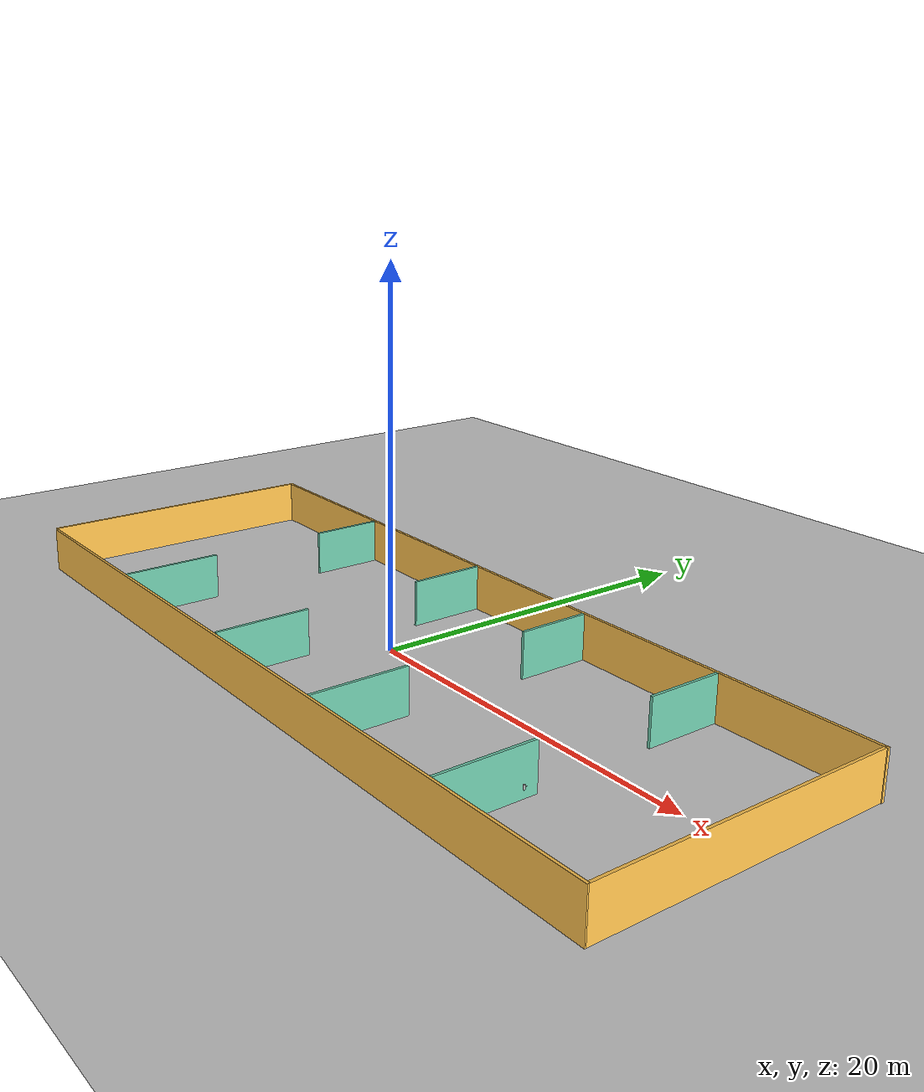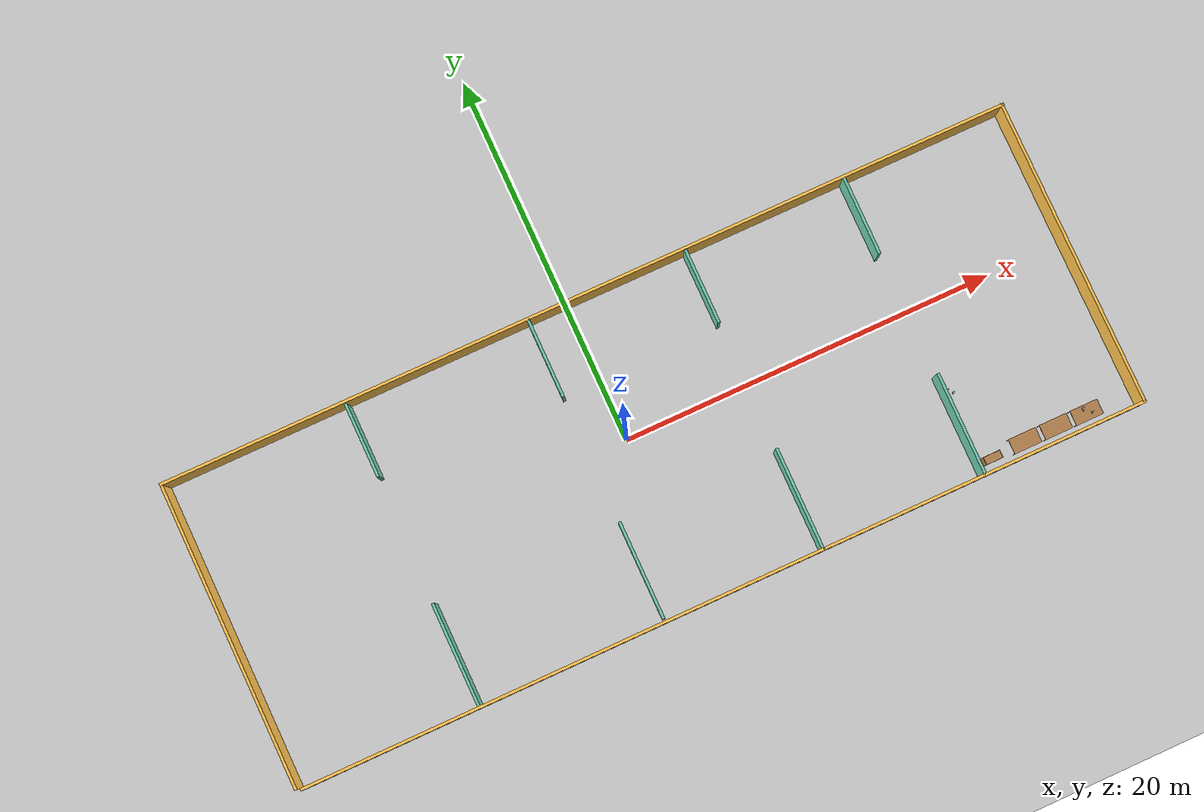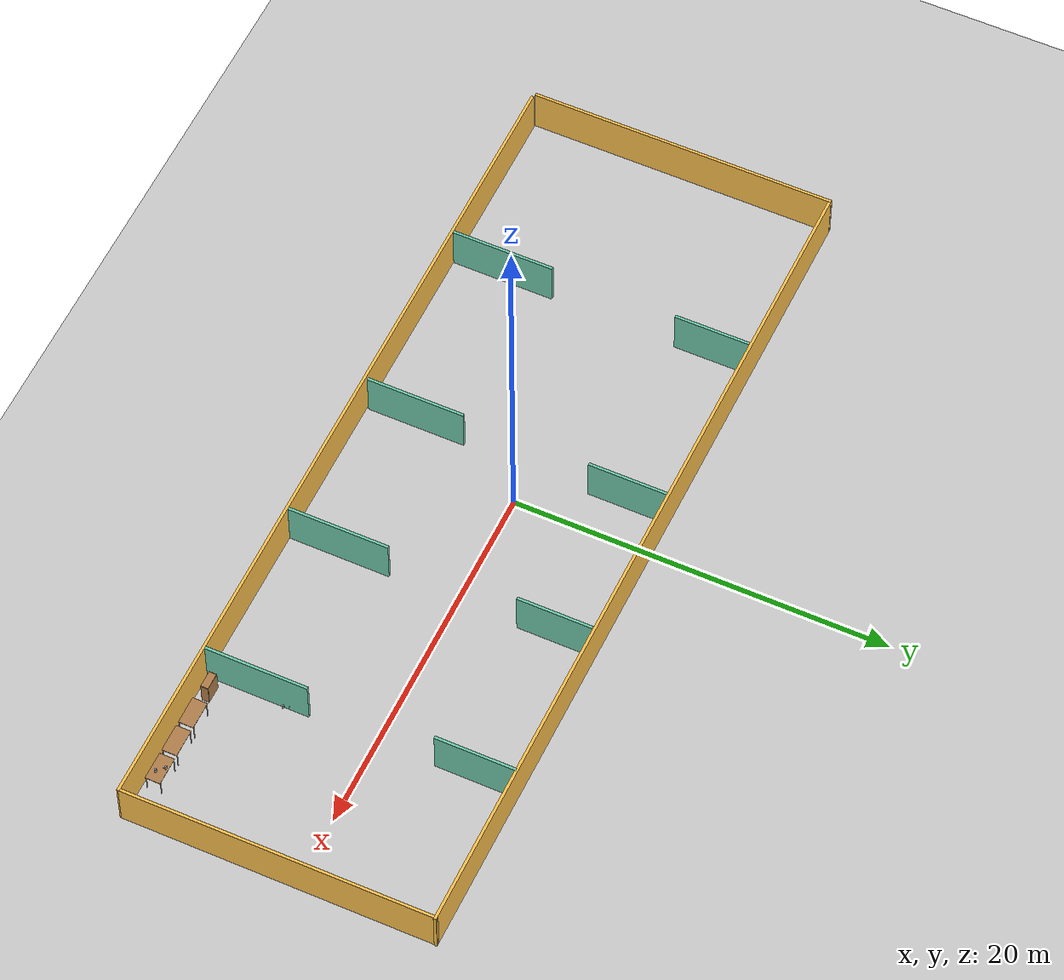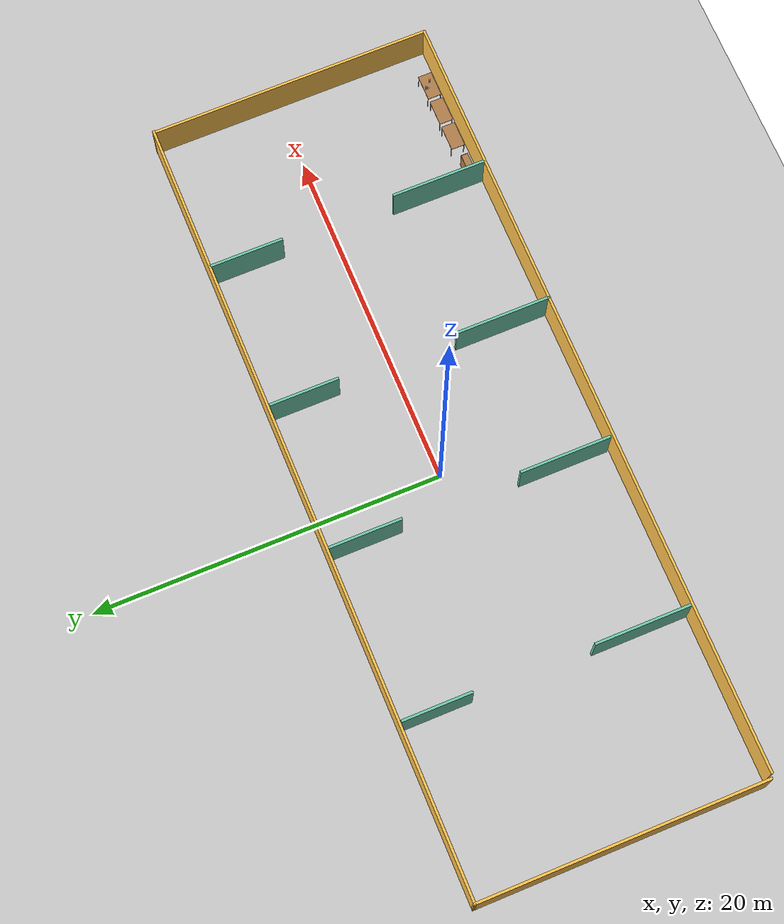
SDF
<sdf version="1.6">
 <world name="default">
  <light name="sun" type="directional">
   <pose>0 0 10 0 -0 0</pose>
   <diffuse>0.8 0.8 0.8 1</diffuse>
   <specular>0.2 0.2 0.2 1</specular>
   <attenuation>
    <range>1000</range>
    <constant>0.9</constant>
    <linear>0.01</linear>
    <quadratic>0.001</quadratic>
   </attenuation>
   <direction>-0.5 0.1 -0.9</direction>
  </light>
  <model name="ground_plane">
   <static>1</static>
   <link name="link">
    <collision name="collision">
     <geometry><plane><normal>0 0 1</normal><size>100 100</size></plane></geometry>
     <surface>
      <contact><collide_bitmask>65535</collide_bitmask></contact>
      <friction><ode><mu>100</mu><mu2>50</mu2></ode></friction>
     </surface>
    </collision>
    <visual name="visual">
     <cast_shadows>0</cast_shadows>
     <geometry><plane><normal>0 0 1</normal><size>100 100</size></plane></geometry>
     <material>
      <script><uri>file://media/materials/scripts/gazebo.material</uri><name>Gazebo/Grey</name></script>
     </material>
    </visual>
   </link>
  </model>
  <gravity>0 0 -9.8</gravity>
  <magnetic_field>6e-06 2.3e-05 -4.2e-05</magnetic_field>
  <atmosphere type="adiabatic"/>
  <physics name="default_physics" default="0" type="ode">
   <max_step_size>0.001</max_step_size>
   <real_time_factor>1</real_time_factor>
   <real_time_update_rate>1000</real_time_update_rate>
  </physics>
  <scene><ambient>0.4 0.4 0.4 1</ambient><background>0.7 0.7 0.7 1</background><shadows>1</shadows></scene>
  <audio><device>default</device></audio>
  <spherical_coordinates>
   <surface_model>EARTH_WGS84</surface_model>
   <latitude_deg>0</latitude_deg>
   <longitude_deg>0</longitude_deg>
   <elevation>0</elevation>
   <heading_deg>0</heading_deg>
  </spherical_coordinates>
  <model name="Hospital">
   <pose>1.0691 -0.83789 0 0 -0 0</pose>
   <link name="Wall_17">
    <collision name="Wall_17_Collision">
     <geometry><box><size>4 0.15 2.5</size></box></geometry>
     <pose>0 0 1.25 0 -0 0</pose>
    </collision>
    <visual name="Wall_17_Visual">
     <pose>0 0 1.25 0 -0 0</pose>
     <geometry><box><size>4 0.15 2.5</size></box></geometry>
     <material>
      <script><uri>file://media/materials/scripts/gazebo.material</uri><name>Gazebo/Grey</name></script>
      <ambient>0.435294 0.796078 0.67451 1</ambient>
     </material>
     <meta><layer>0</layer></meta>
    </visual>
    <pose>-13.0475 6.1149 0 0 -0 -1.5708</pose>
   </link>
   <link name="Wall_19">
    <collision name="Wall_19_Collision">
     <geometry><box><size>4.25 0.15 2.5</size></box></geometry>
     <pose>0 0 1.25 0 -0 0</pose>
    </collision>
    <visual name="Wall_19_Visual">
     <pose>0 0 1.25 0 -0 0</pose>
     <geometry><box><size>4.25 0.15 2.5</size></box></geometry>
     <material>
      <script><uri>file://media/materials/scripts/gazebo.material</uri><name>Gazebo/Grey</name></script>
      <ambient>0.435294 0.796078 0.67451 1</ambient>
     </material>
     <meta><layer>0</layer></meta>
    </visual>
    <pose>-3.11079 6.05236 0 0 -0 -1.5708</pose>
   </link>
   <link name="Wall_21">
    <collision name="Wall_21_Collision">
     <geometry><box><size>4 0.15 2.5</size></box></geometry>
     <pose>0 0 1.25 0 -0 0</pose>
    </collision>
    <visual name="Wall_21_Visual">
     <pose>0 0 1.25 0 -0 0</pose>
     <geometry><box><size>4 0.15 2.5</size></box></geometry>
     <material>
      <script><uri>file://media/materials/scripts/gazebo.material</uri><name>Gazebo/Grey</name></script>
      <ambient>0.435294 0.796078 0.67451 1</ambient>
     </material>
     <meta><layer>0</layer></meta>
    </visual>
    <pose>5.44089 6.07909 0 0 -0 -1.5708</pose>
   </link>
   <link name="Wall_23">
    <collision name="Wall_23_Collision">
     <geometry><box><size>4.25 0.15 2.5</size></box></geometry>
     <pose>0 0 1.25 0 -0 0</pose>
    </collision>
    <visual name="Wall_23_Visual">
     <pose>0 0 1.25 0 -0 0</pose>
     <geometry><box><size>4.25 0.15 2.5</size></box></geometry>
     <material>
      <script><uri>file://media/materials/scripts/gazebo.material</uri><name>Gazebo/Grey</name></script>
      <ambient>0.435294 0.796078 0.67451 1</ambient>
     </material>
     <meta><layer>0</layer></meta>
    </visual>
    <pose>14.1409 6.00062 0 0 -0 -1.5708</pose>
   </link>
   <link name="Wall_26">
    <collision name="Wall_26_Collision">
     <geometry><box><size>45.75 0.15 2.5</size></box></geometry>
     <pose>0 0 1.25 0 -0 0</pose>
    </collision>
    <visual name="Wall_26_Visual">
     <pose>0 0 1.25 0 -0 0</pose>
     <geometry><box><size>45.75 0.15 2.5</size></box></geometry>
     <material>
      <script><uri>file://media/materials/scripts/gazebo.material</uri><name>Gazebo/Grey</name></script>
      <ambient>1 0.764706 0.305882 1</ambient>
     </material>
     <meta><layer>0</layer></meta>
    </visual>
    <pose>0.137339 -8.25445 0 0 -0 0</pose>
   </link>
   <link name="Wall_27">
    <collision name="Wall_27_Collision">
     <geometry><box><size>16.4764 0.15 2.5</size></box></geometry>
     <pose>0 0 1.25 0 -0 0</pose>
    </collision>
    <visual name="Wall_27_Visual">
     <pose>0 0 1.25 0 -0 0</pose>
     <geometry><box><size>16.4764 0.15 2.5</size></box></geometry>
     <material>
      <script><uri>file://media/materials/scripts/gazebo.material</uri><name>Gazebo/Grey</name></script>
      <ambient>1 0.764706 0.305882 1</ambient>
     </material>
     <meta><layer>0</layer></meta>
    </visual>
    <pose>22.902 -0.020567 0 0 -0 1.57513</pose>
   </link>
   <link name="Wall_31">
    <collision name="Wall_31_Collision">
     <geometry><box><size>16.5 0.15 2.5</size></box></geometry>
     <pose>0 0 1.25 0 -0 0</pose>
    </collision>
    <visual name="Wall_31_Visual">
     <pose>0 0 1.25 0 -0 0</pose>
     <geometry><box><size>16.5 0.15 2.5</size></box></geometry>
     <material>
      <script><uri>file://media/materials/scripts/gazebo.material</uri><name>Gazebo/Grey</name></script>
      <ambient>1 0.764706 0.305882 1</ambient>
     </material>
     <meta><layer>0</layer></meta>
    </visual>
    <pose>-22.9375 0.079247 0 0 -0 -1.5708</pose>
   </link>
   <link name="Wall_33">
    <collision name="Wall_33_Collision">
     <geometry><box><size>5.5 0.15 2.5</size></box></geometry>
     <pose>0 0 1.25 0 -0 0</pose>
    </collision>
    <visual name="Wall_33_Visual">
     <pose>0 0 1.25 0 -0 0</pose>
     <geometry><box><size>5.5 0.15 2.5</size></box></geometry>
     <material>
      <script><uri>file://media/materials/scripts/gazebo.material</uri><name>Gazebo/Grey</name></script>
      <ambient>0.435294 0.796078 0.67451 1</ambient>
     </material>
     <meta><layer>0</layer></meta>
    </visual>
    <pose>-13.1614 -5.42759 0 0 -0 -1.5708</pose>
   </link>
   <link name="Wall_35">
    <collision name="Wall_35_Collision">
     <geometry><box><size>5.25 0.15 2.5</size></box></geometry>
     <pose>0 0 1.25 0 -0 0</pose>
    </collision>
    <visual name="Wall_35_Visual">
     <pose>0 0 1.25 0 -0 0</pose>
     <geometry><box><size>5.25 0.15 2.5</size></box></geometry>
     <material>
      <script><uri>file://media/materials/scripts/gazebo.material</uri><name>Gazebo/Grey</name></script>
      <ambient>0.435294 0.796078 0.67451 1</ambient>
     </material>
     <meta><layer>0</layer></meta>
    </visual>
    <pose>-3.15643 -5.46309 0 0 -0 -1.5708</pose>
   </link>
   <link name="Wall_37">
    <collision name="Wall_37_Collision">
     <geometry><box><size>5.5 0.15 2.5</size></box></geometry>
     <pose>0 0 1.25 0 -0 0</pose>
    </collision>
    <visual name="Wall_37_Visual">
     <pose>0 0 1.25 0 -0 0</pose>
     <geometry><box><size>5.5 0.15 2.5</size></box></geometry>
     <material>
      <script><uri>file://media/materials/scripts/gazebo.material</uri><name>Gazebo/Grey</name></script>
      <ambient>0.435294 0.796078 0.67451 1</ambient>
     </material>
     <meta><layer>0</layer></meta>
    </visual>
    <pose>5.40397 -5.53459 0 0 -0 -1.5708</pose>
   </link>
   <link name="Wall_39">
    <collision name="Wall_39_Collision">
     <geometry><box><size>5.5 0.15 2.5</size></box></geometry>
     <pose>0 0 1.25 0 -0 0</pose>
    </collision>
    <visual name="Wall_39_Visual">
     <pose>0 0 1.25 0 -0 0</pose>
     <geometry><box><size>5.5 0.15 2.5</size></box></geometry>
     <material>
      <script><uri>file://media/materials/scripts/gazebo.material</uri><name>Gazebo/Grey</name></script>
      <ambient>0.435294 0.796078 0.67451 1</ambient>
     </material>
     <meta><layer>0</layer></meta>
    </visual>
    <pose>14.2319 -5.48109 0 0 -0 -1.5708</pose>
   </link>
   <link name="Wall_9">
    <collision name="Wall_9_Collision">
     <geometry><box><size>45.9963 0.15 2.5</size></box></geometry>
     <pose>0 0 1.25 0 -0 0</pose>
    </collision>
    <visual name="Wall_9_Visual">
     <pose>0 0 1.25 0 -0 0</pose>
     <geometry><box><size>45.9963 0.15 2.5</size></box></geometry>
     <material>
      <script><uri>file://media/materials/scripts/gazebo.material</uri><name>Gazebo/Grey</name></script>
      <ambient>1 0.764706 0.305882 1</ambient>
     </material>
     <meta><layer>0</layer></meta>
    </visual>
    <pose>-0.014403 8.19272 0 0 -0 3.13891</pose>
   </link>
   <static>1</static>
  </model>
  <model name="table">
   <static>1</static>
   <link name="link">
    <collision name="surface">
     <pose>0 0 1 0 -0 0</pose>
     <geometry><box><size>1.5 0.8 0.03</size></box></geometry>
     <surface><friction><ode><mu>0.6</mu><mu2>0.6</mu2></ode></friction></surface>
    </collision>
    <visual name="visual1">
     <pose>0 0 1 0 -0 0</pose>
     <geometry><box><size>1.5 0.8 0.03</size></box></geometry>
     <material>
      <script><uri>file://media/materials/scripts/gazebo.material</uri><name>Gazebo/Wood</name></script>
     </material>
    </visual>
    <collision name="front_left_leg">
     <pose>0.68 0.38 0.5 0 -0 0</pose>
     <geometry><cylinder><radius>0.02</radius><length>1</length></cylinder></geometry>
    </collision>
    <visual name="front_left_leg">
     <pose>0.68 0.38 0.5 0 -0 0</pose>
     <geometry><cylinder><radius>0.02</radius><length>1</length></cylinder></geometry>
     <material>
      <script><uri>file://media/materials/scripts/gazebo.material</uri><name>Gazebo/Grey</name></script>
     </material>
    </visual>
    <collision name="front_right_leg">
     <pose>0.68 -0.38 0.5 0 -0 0</pose>
     <geometry><cylinder><radius>0.02</radius><length>1</length></cylinder></geometry>
    </collision>
    <visual name="front_right_leg">
     <pose>0.68 -0.38 0.5 0 -0 0</pose>
     <geometry><cylinder><radius>0.02</radius><length>1</length></cylinder></geometry>
     <material>
      <script><uri>file://media/materials/scripts/gazebo.material</uri><name>Gazebo/Grey</name></script>
     </material>
    </visual>
    <collision name="back_right_leg">
     <pose>-0.68 -0.38 0.5 0 -0 0</pose>
     <geometry><cylinder><radius>0.02</radius><length>1</length></cylinder></geometry>
    </collision>
    <visual name="back_right_leg">
     <pose>-0.68 -0.38 0.5 0 -0 0</pose>
     <geometry><cylinder><radius>0.02</radius><length>1</length></cylinder></geometry>
     <material>
      <script><uri>file://media/materials/scripts/gazebo.material</uri><name>Gazebo/Grey</name></script>
     </material>
    </visual>
    <collision name="back_left_leg">
     <pose>-0.68 0.38 0.5 0 -0 0</pose>
     <geometry><cylinder><radius>0.02</radius><length>1</length></cylinder></geometry>
    </collision>
    <visual name="back_left_leg">
     <pose>-0.68 0.38 0.5 0 -0 0</pose>
     <geometry><cylinder><radius>0.02</radius><length>1</length></cylinder></geometry>
     <material>
      <script><uri>file://media/materials/scripts/gazebo.material</uri><name>Gazebo/Grey</name></script>
     </material>
    </visual>
   </link>
   <pose>21.4234 -8.36871 0 0 -0 0</pose>
  </model>
  <model name="table_clone">
   <static>1</static>
   <link name="link">
    <collision name="surface">
     <pose>0 0 1 0 -0 0</pose>
     <geometry><box><size>1.5 0.8 0.03</size></box></geometry>
     <surface><friction><ode><mu>0.6</mu><mu2>0.6</mu2></ode></friction></surface>
    </collision>
    <visual name="visual1">
     <pose>0 0 1 0 -0 0</pose>
     <geometry><box><size>1.5 0.8 0.03</size></box></geometry>
     <material>
      <script><uri>file://media/materials/scripts/gazebo.material</uri><name>Gazebo/Wood</name></script>
     </material>
    </visual>
    <collision name="front_left_leg">
     <pose>0.68 0.38 0.5 0 -0 0</pose>
     <geometry><cylinder><radius>0.02</radius><length>1</length></cylinder></geometry>
    </collision>
    <visual name="front_left_leg">
     <pose>0.68 0.38 0.5 0 -0 0</pose>
     <geometry><cylinder><radius>0.02</radius><length>1</length></cylinder></geometry>
     <material>
      <script><uri>file://media/materials/scripts/gazebo.material</uri><name>Gazebo/Grey</name></script>
     </material>
    </visual>
    <collision name="front_right_leg">
     <pose>0.68 -0.38 0.5 0 -0 0</pose>
     <geometry><cylinder><radius>0.02</radius><length>1</length></cylinder></geometry>
    </collision>
    <visual name="front_right_leg">
     <pose>0.68 -0.38 0.5 0 -0 0</pose>
     <geometry><cylinder><radius>0.02</radius><length>1</length></cylinder></geometry>
     <material>
      <script><uri>file://media/materials/scripts/gazebo.material</uri><name>Gazebo/Grey</name></script>
     </material>
    </visual>
    <collision name="back_right_leg">
     <pose>-0.68 -0.38 0.5 0 -0 0</pose>
     <geometry><cylinder><radius>0.02</radius><length>1</length></cylinder></geometry>
    </collision>
    <visual name="back_right_leg">
     <pose>-0.68 -0.38 0.5 0 -0 0</pose>
     <geometry><cylinder><radius>0.02</radius><length>1</length></cylinder></geometry>
     <material>
      <script><uri>file://media/materials/scripts/gazebo.material</uri><name>Gazebo/Grey</name></script>
     </material>
    </visual>
    <collision name="back_left_leg">
     <pose>-0.68 0.38 0.5 0 -0 0</pose>
     <geometry><cylinder><radius>0.02</radius><length>1</length></cylinder></geometry>
    </collision>
    <visual name="back_left_leg">
     <pose>-0.68 0.38 0.5 0 -0 0</pose>
     <geometry><cylinder><radius>0.02</radius><length>1</length></cylinder></geometry>
     <material>
      <script><uri>file://media/materials/scripts/gazebo.material</uri><name>Gazebo/Grey</name></script>
     </material>
    </visual>
   </link>
   <pose>19.7195 -8.36871 0 0 -0 0</pose>
  </model>
  <model name="table_clone_0">
   <static>1</static>
   <link name="link">
    <collision name="surface">
     <pose>0 0 1 0 -0 0</pose>
     <geometry><box><size>1.5 0.8 0.03</size></box></geometry>
     <surface><friction><ode><mu>0.6</mu><mu2>0.6</mu2></ode></friction></surface>
    </collision>
    <visual name="visual1">
     <pose>0 0 1 0 -0 0</pose>
     <geometry><box><size>1.5 0.8 0.03</size></box></geometry>
     <material>
      <script><uri>file://media/materials/scripts/gazebo.material</uri><name>Gazebo/Wood</name></script>
     </material>
    </visual>
    <collision name="front_left_leg">
     <pose>0.68 0.38 0.5 0 -0 0</pose>
     <geometry><cylinder><radius>0.02</radius><length>1</length></cylinder></geometry>
    </collision>
    <visual name="front_left_leg">
     <pose>0.68 0.38 0.5 0 -0 0</pose>
     <geometry><cylinder><radius>0.02</radius><length>1</length></cylinder></geometry>
     <material>
      <script><uri>file://media/materials/scripts/gazebo.material</uri><name>Gazebo/Grey</name></script>
     </material>
    </visual>
    <collision name="front_right_leg">
     <pose>0.68 -0.38 0.5 0 -0 0</pose>
     <geometry><cylinder><radius>0.02</radius><length>1</length></cylinder></geometry>
    </collision>
    <visual name="front_right_leg">
     <pose>0.68 -0.38 0.5 0 -0 0</pose>
     <geometry><cylinder><radius>0.02</radius><length>1</length></cylinder></geometry>
     <material>
      <script><uri>file://media/materials/scripts/gazebo.material</uri><name>Gazebo/Grey</name></script>
     </material>
    </visual>
    <collision name="back_right_leg">
     <pose>-0.68 -0.38 0.5 0 -0 0</pose>
     <geometry><cylinder><radius>0.02</radius><length>1</length></cylinder></geometry>
    </collision>
    <visual name="back_right_leg">
     <pose>-0.68 -0.38 0.5 0 -0 0</pose>
     <geometry><cylinder><radius>0.02</radius><length>1</length></cylinder></geometry>
     <material>
      <script><uri>file://media/materials/scripts/gazebo.material</uri><name>Gazebo/Grey</name></script>
     </material>
    </visual>
    <collision name="back_left_leg">
     <pose>-0.68 0.38 0.5 0 -0 0</pose>
     <geometry><cylinder><radius>0.02</radius><length>1</length></cylinder></geometry>
    </collision>
    <visual name="back_left_leg">
     <pose>-0.68 0.38 0.5 0 -0 0</pose>
     <geometry><cylinder><radius>0.02</radius><length>1</length></cylinder></geometry>
     <material>
      <script><uri>file://media/materials/scripts/gazebo.material</uri><name>Gazebo/Grey</name></script>
     </material>
    </visual>
   </link>
   <pose>18.0161 -8.36871 0 0 -0 0</pose>
  </model>
  <model name="bookshelf">
   <static>1</static>
   <link name="link">
    <inertial><mass>1</mass></inertial>
    <collision name="back">
     <pose>0 0.005 0.6 0 -0 0</pose>
     <geometry><box><size>0.9 0.01 1.2</size></box></geometry>
    </collision>
    <visual name="visual1">
     <pose>0 0.005 0.6 0 -0 0</pose>
     <geometry><box><size>0.9 0.01 1.2</size></box></geometry>
     <material>
      <script><uri>file://media/materials/scripts/gazebo.material</uri><name>Gazebo/Wood</name></script>
     </material>
    </visual>
    <collision name="left_side">
     <pose>0.45 -0.195 0.6 0 -0 0</pose>
     <geometry><box><size>0.02 0.4 1.2</size></box></geometry>
    </collision>
    <visual name="visual2">
     <pose>0.45 -0.195 0.6 0 -0 0</pose>
     <geometry><box><size>0.02 0.4 1.2</size></box></geometry>
     <material>
      <script><uri>file://media/materials/scripts/gazebo.material</uri><name>Gazebo/Wood</name></script>
     </material>
    </visual>
    <collision name="right_side">
     <pose>-0.45 -0.195 0.6 0 -0 0</pose>
     <geometry><box><size>0.02 0.4 1.2</size></box></geometry>
    </collision>
    <visual name="visual3">
     <pose>-0.45 -0.195 0.6 0 -0 0</pose>
     <geometry><box><size>0.02 0.4 1.2</size></box></geometry>
     <material>
      <script><uri>file://media/materials/scripts/gazebo.material</uri><name>Gazebo/Wood</name></script>
     </material>
    </visual>
    <collision name="bottom">
     <pose>0 -0.195 0.03 0 -0 0</pose>
     <geometry><box><size>0.88 0.4 0.06</size></box></geometry>
    </collision>
    <visual name="visual4">
     <pose>0 -0.195 0.03 0 -0 0</pose>
     <geometry><box><size>0.88 0.4 0.06</size></box></geometry>
     <material>
      <script><uri>file://media/materials/scripts/gazebo.material</uri><name>Gazebo/Wood</name></script>
     </material>
    </visual>
    <collision name="top">
     <pose>0 -0.195 1.19 0 -0 0</pose>
     <geometry><box><size>0.88 0.4 0.02</size></box></geometry>
    </collision>
    <visual name="visual5">
     <pose>0 -0.195 1.19 0 -0 0</pose>
     <geometry><box><size>0.88 0.4 0.02</size></box></geometry>
     <material>
      <script><uri>file://media/materials/scripts/gazebo.material</uri><name>Gazebo/Wood</name></script>
     </material>
    </visual>
    <collision name="low_shelf">
     <pose>0 -0.195 0.43 0 -0 0</pose>
     <geometry><box><size>0.88 0.4 0.02</size></box></geometry>
    </collision>
    <visual name="visual6">
     <pose>0 -0.195 0.43 0 -0 0</pose>
     <geometry><box><size>0.88 0.4 0.02</size></box></geometry>
     <material>
      <script><uri>file://media/materials/scripts/gazebo.material</uri><name>Gazebo/Wood</name></script>
     </material>
    </visual>
    <collision name="high_shelf">
     <pose>0 -0.195 0.8 0 -0 0</pose>
     <geometry><box><size>0.88 0.4 0.02</size></box></geometry>
    </collision>
    <visual name="visual7">
     <pose>0 -0.195 0.8 0 -0 0</pose>
     <geometry><box><size>0.88 0.4 0.02</size></box></geometry>
     <material>
      <script><uri>file://media/materials/scripts/gazebo.material</uri><name>Gazebo/Wood</name></script>
     </material>
    </visual>
   </link>
   <pose>16.1829 -8.26611 0 0 -0 0</pose>
  </model>
  <model name="beer">
   <link name="link">
    <pose>0 0 0.115 0 -0 0</pose>
    <inertial>
     <mass>0.39</mass>
     <inertia><ixx>0.00058</ixx><ixy>0</ixy><ixz>0</ixz><iyy>0.00058</iyy><iyz>0</iyz><izz>0.00019</izz></inertia>
    </inertial>
    <collision name="collision">
     <geometry><cylinder><radius>0.055</radius><length>0.23</length></cylinder></geometry>
    </collision>
    <visual name="visual">
     <geometry><cylinder><radius>0.055</radius><length>0.23</length></cylinder></geometry>
     <material>
      <script>
       <uri>model://beer/materials/scripts</uri>
       <uri>model://beer/materials/textures</uri>
       <name>Beer/Diffuse</name>
      </script>
     </material>
    </visual>
   </link>
   <pose>21.3247 -8.10058 1.01499 1e-06 3e-06 0.00991</pose>
  </model>
  <model name="aruco_marker_6cm_63">
   <static>0</static>
   <link name="marker">
    <inertial>
     <mass>0.1</mass>
     <inertia><ixx>0</ixx><ixy>0</ixy><ixz>0</ixz><iyy>0</iyy><iyz>0</iyz><izz>0</izz></inertia>
    </inertial>
    <visual name="visual">
     <pose>0 0 0 0 -0 1.57</pose>
     <geometry><box><size>0.06 0.06 0.001</size></box></geometry>
     <material>
      <script>
       <uri>model://aruco_marker_6cm_63/material/scripts</uri>
       <uri>model://aruco_marker_6cm_63/material/textures</uri>
       <name>Aruco/aruco_marker_6cm_63</name>
      </script>
     </material>
    </visual>
    <collision name="collision"><geometry><box><size>0.06 0.06 0.001</size></box></geometry></collision>
    <self_collide>1</self_collide>
   </link>
   <pose>21.3085 -8.21992 1.0155 2.8e-05 1.5e-05 -0.008293</pose>
  </model>
  <model name="beer_clone_1">
   <link name="link">
    <pose>0 0 0.115 0 -0 0</pose>
    <inertial>
     <mass>0.39</mass>
     <inertia><ixx>0.00058</ixx><ixy>0</ixy><ixz>0</ixz><iyy>0.00058</iyy><iyz>0</iyz><izz>0.00019</izz></inertia>
    </inertial>
    <collision name="collision">
     <geometry><cylinder><radius>0.055</radius><length>0.23</length></cylinder></geometry>
    </collision>
    <visual name="visual">
     <geometry><cylinder><radius>0.055</radius><length>0.23</length></cylinder></geometry>
     <material>
      <script>
       <uri>model://beer/materials/scripts</uri>
       <uri>model://beer/materials/textures</uri>
       <name>Beer/Diffuse</name>
      </script>
     </material>
    </visual>
   </link>
   <pose>15.8152 -4.69467 0.753384 2.5e-05 0.00011 -0.007122</pose>
  </model>
  <model name="beer_clone">
   <link name="link">
    <pose>0 0 0.115 0 -0 0</pose>
    <inertial>
     <mass>0.39</mass>
     <inertia><ixx>0.00058</ixx><ixy>0</ixy><ixz>0</ixz><iyy>0.00058</iyy><iyz>0</iyz><izz>0.00019</izz></inertia>
    </inertial>
    <collision name="collision">
     <geometry><cylinder><radius>0.055</radius><length>0.23</length></cylinder></geometry>
    </collision>
    <visual name="visual">
     <geometry><cylinder><radius>0.055</radius><length>0.23</length></cylinder></geometry>
     <material>
      <script>
       <uri>model://beer/materials/scripts</uri>
       <uri>model://beer/materials/textures</uri>
       <name>Beer/Diffuse</name>
      </script>
     </material>
    </visual>
   </link>
   <pose>21.6812 -8.45993 1.015 -1e-06 2.7e-05 0.006442</pose>
  </model>
  <model name="aruco_marker_6cm_63_0">
   <static>0</static>
   <link name="marker">
    <inertial>
     <mass>0.1</mass>
     <inertia><ixx>0</ixx><ixy>0</ixy><ixz>0</ixz><iyy>0</iyy><iyz>0</iyz><izz>0</izz></inertia>
    </inertial>
    <visual name="visual">
     <pose>0 0 0 0 -0 1.57</pose>
     <geometry><box><size>0.06 0.06 0.001</size></box></geometry>
     <material>
      <script>
       <uri>model://aruco_marker_6cm_63/material/scripts</uri>
       <uri>model://aruco_marker_6cm_63/material/textures</uri>
       <name>Aruco/aruco_marker_6cm_63</name>
      </script>
     </material>
    </visual>
    <collision name="collision"><geometry><box><size>0.06 0.06 0.001</size></box></geometry></collision>
    <self_collide>1</self_collide>
   </link>
   <pose>15.6684 -4.43383 0.753894 4.5e-05 0.000146 1e-06</pose>
  </model>
 </world>
</sdf>
